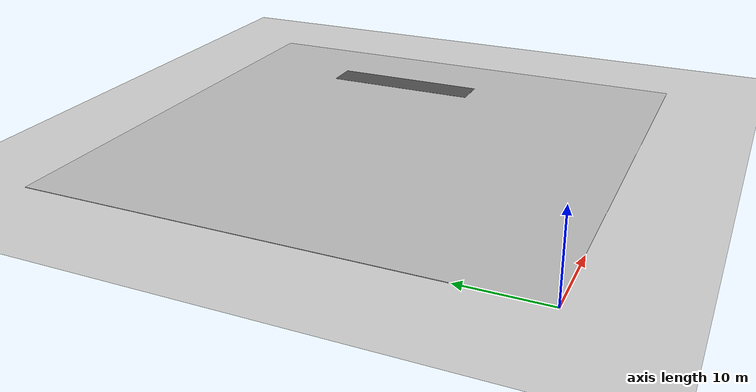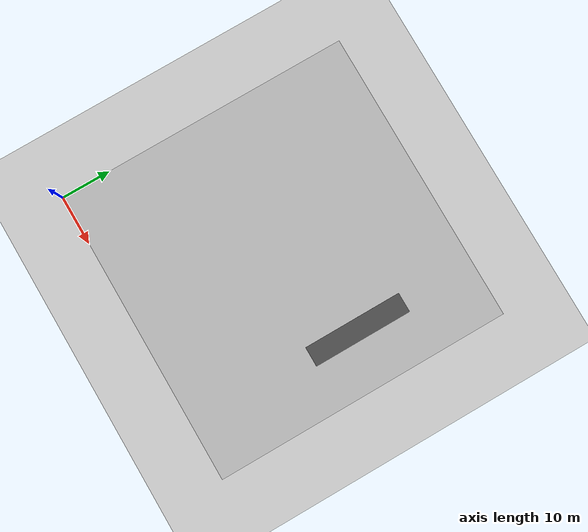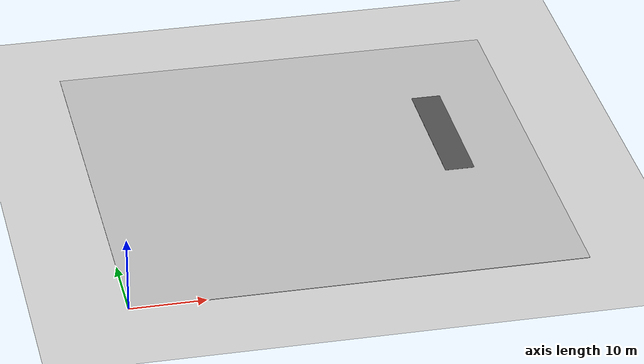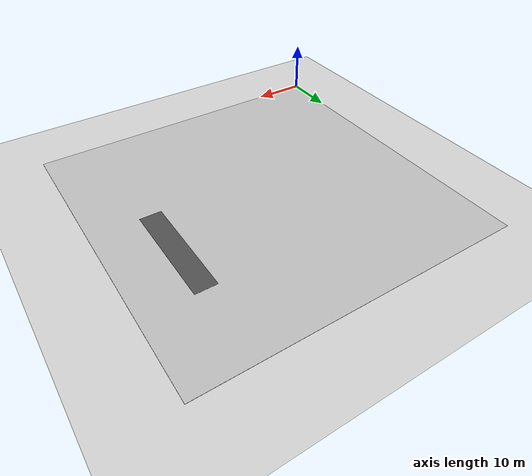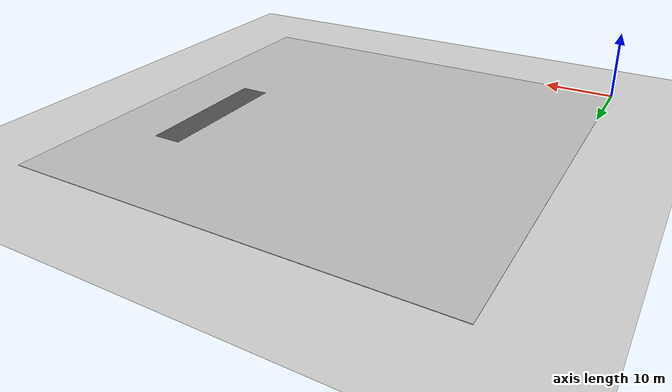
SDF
<sdf version='1.7'>
  <world name='default'>
    <spherical_coordinates>
      <surface_model>EARTH_WGS84</surface_model>
      <latitude_deg>42.66791</latitude_deg>
      <longitude_deg>-83.21958</longitude_deg>
      <elevation>286</elevation>
      <heading_deg>90</heading_deg>
    </spherical_coordinates>

    <!-- Ground Plane -->
    <include>
      <uri>model://ground_plane</uri>
      <name>Ground Plane</name>
      <pose>0 0 0 0 0 0</pose>
    </include>

    <!-- IGVC Track-->
    <include>
      <uri>model://igvc_track</uri>
      <name>IGVC Track</name>
      <pose>30 30 0 0 0 1.57</pose>
    </include>

    <!-- Ramp -->
    <include>
      <uri>model://ramp</uri>
      <name>Ramp</name>
      <pose>48.944 35.1802 0 0 0 -1.5708</pose>
    </include>

    <!-- Light -->
    <light name='sun' type='directional'>
      <cast_shadows>1</cast_shadows>
      <pose>0 0 10 0 -0 0</pose>
      <diffuse>0.8 0.8 0.8 1</diffuse>
      <specular>0.2 0.2 0.2 1</specular>
      <attenuation>
        <range>1000</range>
        <constant>0.9</constant>
        <linear>0.01</linear>
        <quadratic>0.001</quadratic>
      </attenuation>
      <direction>-0.5 0.1 -0.9</direction>
    </light>

    <!-- Other Basics -->
    <gravity>0 0 -9.8</gravity>
    <magnetic_field>6e-06 2.3e-05 -4.2e-05</magnetic_field>
    <atmosphere type='adiabatic'/>
    <physics type='ode'>
      <max_step_size>0.001</max_step_size>
      <real_time_factor>1</real_time_factor>
      <real_time_update_rate>1000</real_time_update_rate>
    </physics>
    <scene>
      <ambient>0.7 0.7 0.7 1</ambient>
      <background>0.8 0.8 0.8  1</background>
      <shadows>1</shadows>
    </scene>
    <wind/>

    <!-- Camera -->
    <gui fullscreen='0'>
      <camera name='user_camera'>
        <pose>39.3076 -25.7805 68.7418 0 0.92 1.62</pose>
        <view_controller>orbit</view_controller>
        <projection_type>perspective</projection_type>
      </camera>
    </gui>
  </world>
</sdf>

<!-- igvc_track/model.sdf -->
<sdf version="1.5">
  <model name="igvc_track">
    <static>true</static>
    <link name="link">
      <collision name="collision">
        <geometry>
          <box>
            <size>60 60 .05</size>
          </box>
        </geometry>
      </collision>
      <visual name="visual">
        <cast_shadows>false</cast_shadows>
        <geometry>
          <box>
            <size>60 60 .05</size>
          </box>
        </geometry>
        <material>
          <script>
            <uri>model://igvc_track/materials/scripts</uri>
            <uri>model://igvc_track/materials/textures</uri>
            <name>vrc/ground</name>
          </script>
        </material>
      </visual>
    </link>
   <link name="link2">
      <collision name="collision">
        <geometry>
          <box>
            <size>60 60 .05</size>
          </box>
        </geometry>
      </collision>
      <visual name="visual">
        <cast_shadows>false</cast_shadows>
        <geometry>
          <box>
            <size>60 60 .07</size>
          </box>
        </geometry>
        <material>
          <script>
            <uri>model://igvc_track/materials/scripts</uri>
            <uri>model://igvc_track/materials/textures</uri>
            <name>vrc/track</name>
          </script>
        </material>
      </visual>
    </link>
  </model>
</sdf>

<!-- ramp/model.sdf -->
<sdf version="1.4">
  <model name="ramp">
    <static>true</static>
    <pose>0 0 0.2 0 0.15 0</pose>
    <link name="link">
      <collision name="collision">
        <geometry>
          <box>
            <size>20 4 .1</size>
          </box>
        </geometry>
      </collision>
      <visual name="visual">
        <geometry>
          <box>
            <size>20 4 .1</size>
          </box>
        </geometry>
        <material>
          <script>
            <uri>model://asphalt_plane/materials/scripts/asphalt.material</uri>
            <name>vrc/asphalt</name>
          </script>
        </material>
      </visual>
    </link>
  </model>
</sdf>
